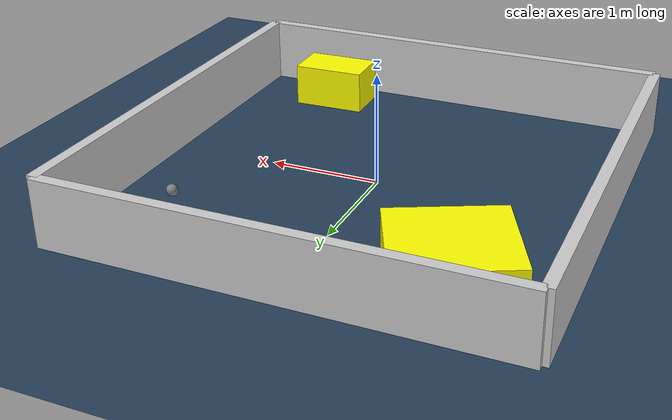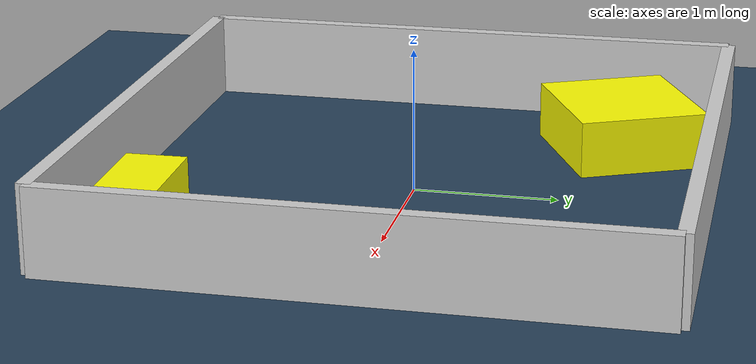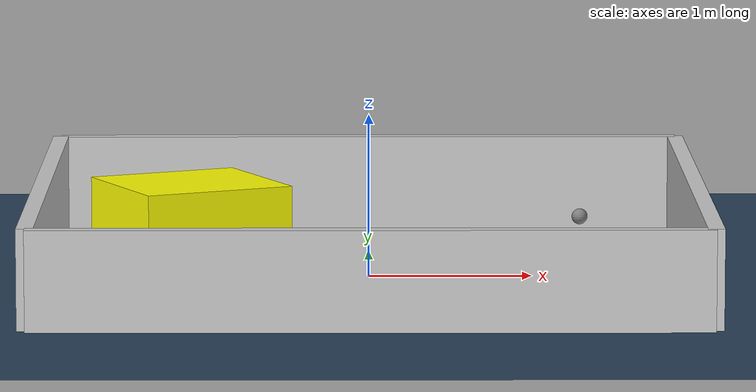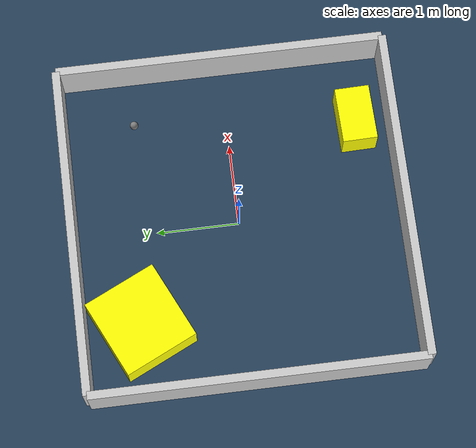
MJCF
<?xml version="1.0" ?>
<mujoco model="generated_environment">
  <option timestep="0.01" integrator="RK4" cone="elliptic"/>
  <default>
    <geom density="1"/>
  </default>
  <asset>
    <texture builtin="gradient" height="3072" rgb1="0.3 0.5 0.7" rgb2="0 0 0" type="skybox" width="512"/>
    <texture builtin="checker" height="300" mark="edge" markrgb="0.8 0.8 0.8" name="groundplane" rgb1="0.2 0.3 0.4" rgb2="0.1 0.2 0.3" type="2d" width="300"/>
    <material name="groundplane" reflectance="0.2" texrepeat="5 5" texture="groundplane" texuniform="true"/>
    <material name="robot" rgba="0.0 1.0 0.0 1"/>
  </asset>
  <worldbody>
    <light dir="0 0 -1" directional="true" pos="0 0 1.5"/>
    <geom condim="4" friction="1.0 0.005 0.001" material="groundplane" name="floor" size="0 0 0.05" type="plane"/>
    <body name="walls">
      <geom name="wall_1" condim="4" pos="-2.0 0.0 0.3" rgba="0.800000011920929 0.800000011920929 0.800000011920929 1.0" size="0.05 2.0 0.3" type="box"/>
      <geom name="wall_2" condim="4" pos="2.0 0.0 0.3" rgba="0.800000011920929 0.800000011920929 0.800000011920929 1.0" size="0.05 2.0 0.3" type="box"/>
      <geom name="wall_3" condim="4" pos="0.0 -2.0 0.3" rgba="0.800000011920929 0.800000011920929 0.800000011920929 1.0" size="2.0 0.05 0.3" type="box"/>
      <geom name="wall_4" condim="4" pos="0.0 2.0 0.3" rgba="0.800000011920929 0.800000011920929 0.800000011920929 1.0" size="2.0 0.05 0.3" type="box"/>
    </body>
    <body name="robot">
      <joint name="joint_x" type="slide" pos="0 0 0" axis="1 0 0"/>
      <joint name="joint_y" type="slide" pos="0 0 0" axis="0 1 0"/>
      <geom name="robot" type="sphere" pos="1.3447677703679113 1.130948121010619 0.2" size="0.05" mass="5." friction="1.0 0.005 0.0001" condim="4"/>
      <site name="sensor_ball"/>
    </body>
    <body name="obstacle_1_movable">
      <geom name="obstacle_1_movable" condim="4" pos="1.1053180447656261 -1.5685189423636756 0.2" euler="0 0 1.4199373290864914" friction="1.0 0.005 0.001" rgba="1 1 0 1" size="0.3405847860915092 0.2114508737271054 0.2" type="box" mass="0.1"/>
      <joint type="free"/>
    </body>
    <body name="obstacle_2_movable">
      <geom name="obstacle_2_movable" condim="4" pos="-1.133668230265095 1.3038486807926728 0.2" euler="0 0 115.32382459306054" friction="1.0 0.005 0.001" rgba="1 1 0 1" size="0.46519168248833426 0.4963381862696866 0.2" type="box" mass="0.1"/>
      <joint type="free"/>
    </body>
  </worldbody>
  <actuator>
    <motor name="actuator_x" joint="joint_x" gear="1" ctrlrange="-1 1"/>
    <motor name="actuator_y" joint="joint_y" gear="1" ctrlrange="-1 1"/>
  </actuator>
</mujoco>
